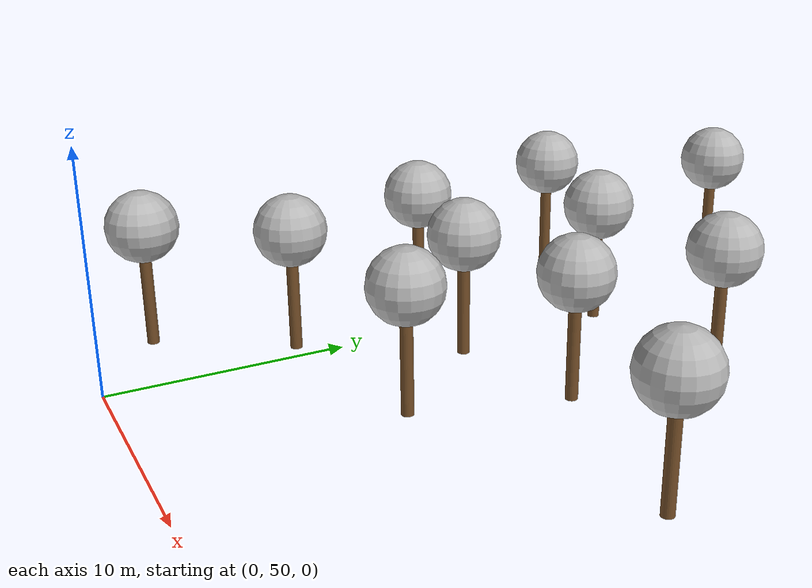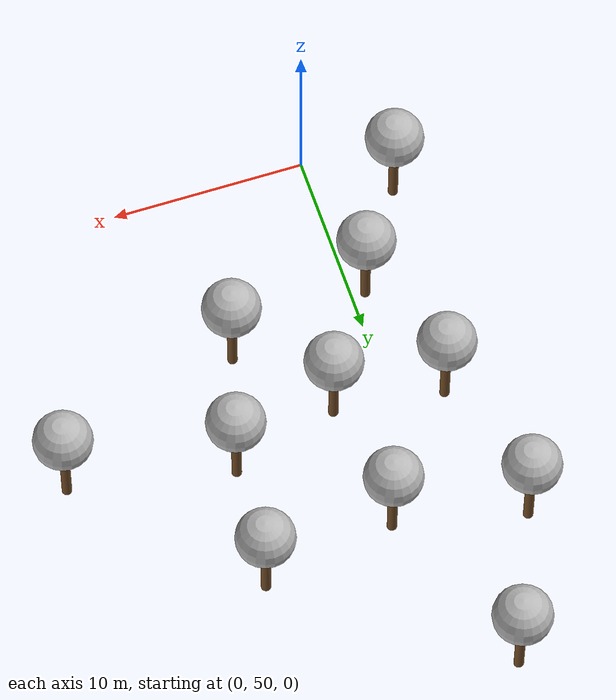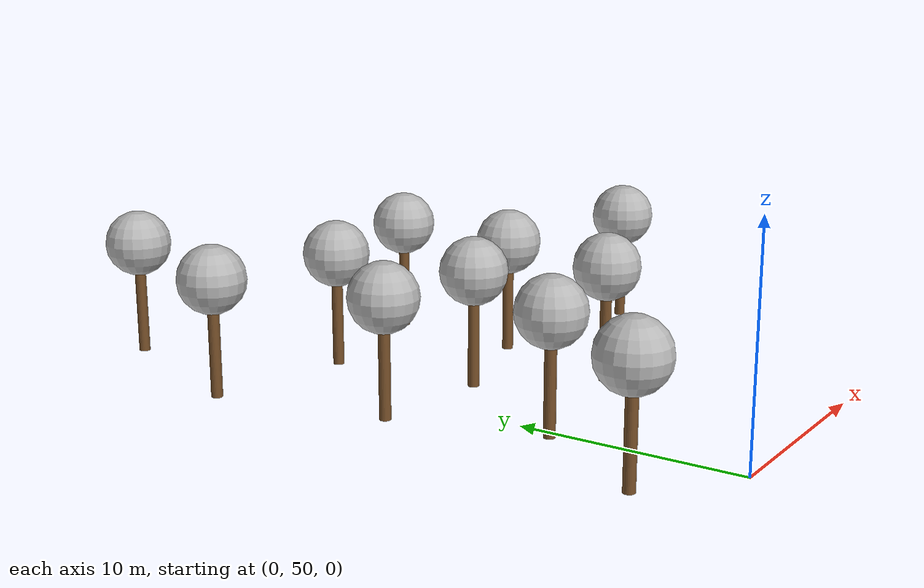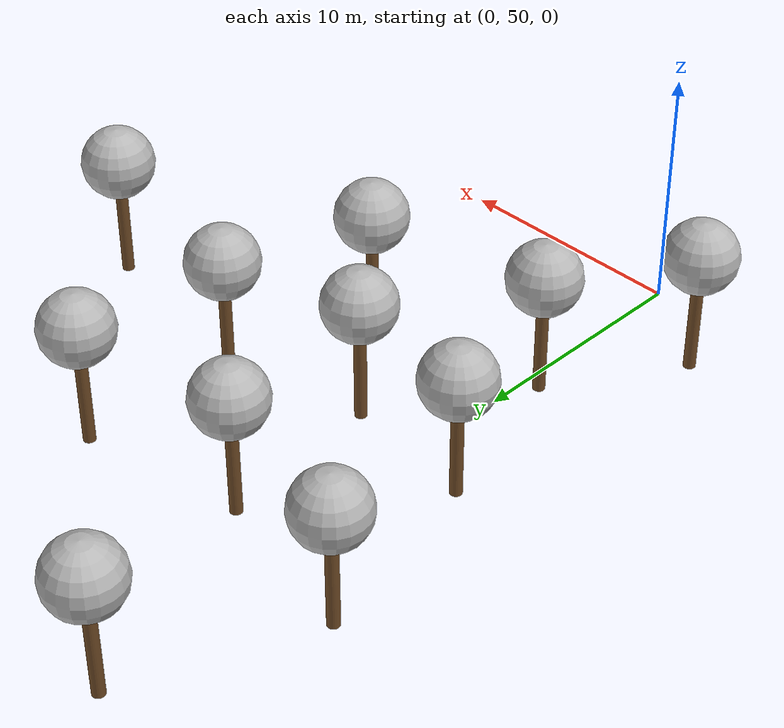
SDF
<sdf version="1.7">
 <world name="default">
  <model name="tree_simple">
   <static>1</static>
   <link name="link">
    <pose>0 0 0.1 0 -0 0</pose>
    <inertial>
     <mass>666</mass>
     <inertia>
      <ixx>0.0861167</ixx>
      <ixy>0</ixy>
      <ixz>0</ixz>
      <iyy>0.0861167</iyy>
      <iyz>0</iyz>
      <izz>0.0861167</izz>
     </inertia>
    </inertial>
    <collision name="collision_trunk">
     <pose>0 0 2 0 -0 0</pose>
     <geometry><cylinder><radius>0.25</radius><length>4</length></cylinder></geometry>
     <surface>
      <contact>
       <poissons_ratio>0.347</poissons_ratio>
       <elastic_modulus>8.8e+09</elastic_modulus>
       <ode><kp>100000</kp><kd>100</kd><max_vel>100</max_vel><min_depth>0.001</min_depth></ode>
      </contact>
      <friction>
       <torsional>
        <coefficient>1</coefficient>
        <use_patch_radius>0</use_patch_radius>
        <surface_radius>0.01</surface_radius>
       </torsional>
      </friction>
     </surface>
    </collision>
    <collision name="collision_treetop">
     <pose>0 0 5.2 0 -0 0</pose>
     <geometry><sphere><radius>1.5</radius></sphere></geometry>
     <surface>
      <contact>
       <poissons_ratio>0.347</poissons_ratio>
       <elastic_modulus>8.8e+09</elastic_modulus>
       <ode><kp>100000</kp><kd>100</kd><max_vel>100</max_vel><min_depth>0.001</min_depth></ode>
      </contact>
      <friction>
       <torsional>
        <coefficient>1</coefficient>
        <use_patch_radius>0</use_patch_radius>
        <surface_radius>0.01</surface_radius>
       </torsional>
      </friction>
     </surface>
    </collision>
    <visual name="trunk">
     <pose>0 0 2 0 -0 0</pose>
     <geometry><cylinder><radius>0.25</radius><length>4</length></cylinder></geometry>
     <material>
      <script>
       <uri>model://tree_simple/scripts</uri>
       <uri>model://tree_simple/materials/textures</uri>
       <name>TreeSimple/Trunk</name>
      </script>
     </material>
    </visual>
    <visual name="treetop">
     <pose>0 0 5.2 0 -0 0</pose>
     <geometry><sphere><radius>1.5</radius></sphere></geometry>
     <material>
      <script>
       <uri>model://tree_simple/scripts</uri>
       <uri>model://tree_simple/materials/textures</uri>
       <name>TreeSimple/Treetop</name>
      </script>
     </material>
    </visual>
   </link>
   <pose>6.82311 59.8354 0 0 -0 0</pose>
  </model>
  <model name="tree_simple_0_clone">
   <static>1</static>
   <link name="link">
    <pose>0 0 0.1 0 -0 0</pose>
    <inertial>
     <mass>666</mass>
     <inertia>
      <ixx>0.0861167</ixx>
      <ixy>0</ixy>
      <ixz>0</ixz>
      <iyy>0.0861167</iyy>
      <iyz>0</iyz>
      <izz>0.0861167</izz>
     </inertia>
    </inertial>
    <collision name="collision_trunk">
     <pose>0 0 2 0 -0 0</pose>
     <geometry><cylinder><radius>0.25</radius><length>4</length></cylinder></geometry>
     <surface>
      <contact>
       <poissons_ratio>0.347</poissons_ratio>
       <elastic_modulus>8.8e+09</elastic_modulus>
       <ode><kp>100000</kp><kd>100</kd><max_vel>100</max_vel><min_depth>0.001</min_depth></ode>
      </contact>
      <friction>
       <torsional>
        <coefficient>1</coefficient>
        <use_patch_radius>0</use_patch_radius>
        <surface_radius>0.01</surface_radius>
       </torsional>
      </friction>
     </surface>
    </collision>
    <collision name="collision_treetop">
     <pose>0 0 5.2 0 -0 0</pose>
     <geometry><sphere><radius>1.5</radius></sphere></geometry>
     <surface>
      <contact>
       <poissons_ratio>0.347</poissons_ratio>
       <elastic_modulus>8.8e+09</elastic_modulus>
       <ode><kp>100000</kp><kd>100</kd><max_vel>100</max_vel><min_depth>0.001</min_depth></ode>
      </contact>
      <friction>
       <torsional>
        <coefficient>1</coefficient>
        <use_patch_radius>0</use_patch_radius>
        <surface_radius>0.01</surface_radius>
       </torsional>
      </friction>
     </surface>
    </collision>
    <visual name="trunk">
     <pose>0 0 2 0 -0 0</pose>
     <geometry><cylinder><radius>0.25</radius><length>4</length></cylinder></geometry>
     <material>
      <script>
       <uri>model://tree_simple/scripts</uri>
       <uri>model://tree_simple/materials/textures</uri>
       <name>TreeSimple/Trunk</name>
      </script>
     </material>
    </visual>
    <visual name="treetop">
     <pose>0 0 5.2 0 -0 0</pose>
     <geometry><sphere><radius>1.5</radius></sphere></geometry>
     <material>
      <script>
       <uri>model://tree_simple/scripts</uri>
       <uri>model://tree_simple/materials/textures</uri>
       <name>TreeSimple/Treetop</name>
      </script>
     </material>
    </visual>
   </link>
   <pose>16.8324 64.3347 0 0 -0 0</pose>
  </model>
  <model name="tree_simple_0_clone_0">
   <static>1</static>
   <link name="link">
    <pose>0 0 0.1 0 -0 0</pose>
    <inertial>
     <mass>666</mass>
     <inertia>
      <ixx>0.0861167</ixx>
      <ixy>0</ixy>
      <ixz>0</ixz>
      <iyy>0.0861167</iyy>
      <iyz>0</iyz>
      <izz>0.0861167</izz>
     </inertia>
    </inertial>
    <collision name="collision_trunk">
     <pose>0 0 2 0 -0 0</pose>
     <geometry><cylinder><radius>0.25</radius><length>4</length></cylinder></geometry>
     <surface>
      <contact>
       <poissons_ratio>0.347</poissons_ratio>
       <elastic_modulus>8.8e+09</elastic_modulus>
       <ode><kp>100000</kp><kd>100</kd><max_vel>100</max_vel><min_depth>0.001</min_depth></ode>
      </contact>
      <friction>
       <torsional>
        <coefficient>1</coefficient>
        <use_patch_radius>0</use_patch_radius>
        <surface_radius>0.01</surface_radius>
       </torsional>
      </friction>
     </surface>
    </collision>
    <collision name="collision_treetop">
     <pose>0 0 5.2 0 -0 0</pose>
     <geometry><sphere><radius>1.5</radius></sphere></geometry>
     <surface>
      <contact>
       <poissons_ratio>0.347</poissons_ratio>
       <elastic_modulus>8.8e+09</elastic_modulus>
       <ode><kp>100000</kp><kd>100</kd><max_vel>100</max_vel><min_depth>0.001</min_depth></ode>
      </contact>
      <friction>
       <torsional>
        <coefficient>1</coefficient>
        <use_patch_radius>0</use_patch_radius>
        <surface_radius>0.01</surface_radius>
       </torsional>
      </friction>
     </surface>
    </collision>
    <visual name="trunk">
     <pose>0 0 2 0 -0 0</pose>
     <geometry><cylinder><radius>0.25</radius><length>4</length></cylinder></geometry>
     <material>
      <script>
       <uri>model://tree_simple/scripts</uri>
       <uri>model://tree_simple/materials/textures</uri>
       <name>TreeSimple/Trunk</name>
      </script>
     </material>
    </visual>
    <visual name="treetop">
     <pose>0 0 5.2 0 -0 0</pose>
     <geometry><sphere><radius>1.5</radius></sphere></geometry>
     <material>
      <script>
       <uri>model://tree_simple/scripts</uri>
       <uri>model://tree_simple/materials/textures</uri>
       <name>TreeSimple/Treetop</name>
      </script>
     </material>
    </visual>
   </link>
   <pose>-2.64272 64.897 0 0 -0 0</pose>
  </model>
  <model name="tree_simple_0_clone_0_clone">
   <static>1</static>
   <link name="link">
    <pose>0 0 0.1 0 -0 0</pose>
    <inertial>
     <mass>666</mass>
     <inertia>
      <ixx>0.0861167</ixx>
      <ixy>0</ixy>
      <ixz>0</ixz>
      <iyy>0.0861167</iyy>
      <iyz>0</iyz>
      <izz>0.0861167</izz>
     </inertia>
    </inertial>
    <collision name="collision_trunk">
     <pose>0 0 2 0 -0 0</pose>
     <geometry><cylinder><radius>0.25</radius><length>4</length></cylinder></geometry>
     <surface>
      <contact>
       <poissons_ratio>0.347</poissons_ratio>
       <elastic_modulus>8.8e+09</elastic_modulus>
       <ode><kp>100000</kp><kd>100</kd><max_vel>100</max_vel><min_depth>0.001</min_depth></ode>
      </contact>
      <friction>
       <torsional>
        <coefficient>1</coefficient>
        <use_patch_radius>0</use_patch_radius>
        <surface_radius>0.01</surface_radius>
       </torsional>
      </friction>
     </surface>
    </collision>
    <collision name="collision_treetop">
     <pose>0 0 5.2 0 -0 0</pose>
     <geometry><sphere><radius>1.5</radius></sphere></geometry>
     <surface>
      <contact>
       <poissons_ratio>0.347</poissons_ratio>
       <elastic_modulus>8.8e+09</elastic_modulus>
       <ode><kp>100000</kp><kd>100</kd><max_vel>100</max_vel><min_depth>0.001</min_depth></ode>
      </contact>
      <friction>
       <torsional>
        <coefficient>1</coefficient>
        <use_patch_radius>0</use_patch_radius>
        <surface_radius>0.01</surface_radius>
       </torsional>
      </friction>
     </surface>
    </collision>
    <visual name="trunk">
     <pose>0 0 2 0 -0 0</pose>
     <geometry><cylinder><radius>0.25</radius><length>4</length></cylinder></geometry>
     <material>
      <script>
       <uri>model://tree_simple/scripts</uri>
       <uri>model://tree_simple/materials/textures</uri>
       <name>TreeSimple/Trunk</name>
      </script>
     </material>
    </visual>
    <visual name="treetop">
     <pose>0 0 5.2 0 -0 0</pose>
     <geometry><sphere><radius>1.5</radius></sphere></geometry>
     <material>
      <script>
       <uri>model://tree_simple/scripts</uri>
       <uri>model://tree_simple/materials/textures</uri>
       <name>TreeSimple/Treetop</name>
      </script>
     </material>
    </visual>
   </link>
   <pose>-3.94262 52.9933 0 0 -0 0</pose>
  </model>
  <model name="tree_simple_0_clone_0_clone_clone_0">
   <static>1</static>
   <link name="link">
    <pose>0 0 0.1 0 -0 0</pose>
    <inertial>
     <mass>666</mass>
     <inertia>
      <ixx>0.0861167</ixx>
      <ixy>0</ixy>
      <ixz>0</ixz>
      <iyy>0.0861167</iyy>
      <iyz>0</iyz>
      <izz>0.0861167</izz>
     </inertia>
    </inertial>
    <collision name="collision_trunk">
     <pose>0 0 2 0 -0 0</pose>
     <geometry><cylinder><radius>0.25</radius><length>4</length></cylinder></geometry>
     <surface>
      <contact>
       <poissons_ratio>0.347</poissons_ratio>
       <elastic_modulus>8.8e+09</elastic_modulus>
       <ode><kp>100000</kp><kd>100</kd><max_vel>100</max_vel><min_depth>0.001</min_depth></ode>
      </contact>
      <friction>
       <torsional>
        <coefficient>1</coefficient>
        <use_patch_radius>0</use_patch_radius>
        <surface_radius>0.01</surface_radius>
       </torsional>
      </friction>
     </surface>
    </collision>
    <collision name="collision_treetop">
     <pose>0 0 5.2 0 -0 0</pose>
     <geometry><sphere><radius>1.5</radius></sphere></geometry>
     <surface>
      <contact>
       <poissons_ratio>0.347</poissons_ratio>
       <elastic_modulus>8.8e+09</elastic_modulus>
       <ode><kp>100000</kp><kd>100</kd><max_vel>100</max_vel><min_depth>0.001</min_depth></ode>
      </contact>
      <friction>
       <torsional>
        <coefficient>1</coefficient>
        <use_patch_radius>0</use_patch_radius>
        <surface_radius>0.01</surface_radius>
       </torsional>
      </friction>
     </surface>
    </collision>
    <visual name="trunk">
     <pose>0 0 2 0 -0 0</pose>
     <geometry><cylinder><radius>0.25</radius><length>4</length></cylinder></geometry>
     <material>
      <script>
       <uri>model://tree_simple/scripts</uri>
       <uri>model://tree_simple/materials/textures</uri>
       <name>TreeSimple/Trunk</name>
      </script>
     </material>
    </visual>
    <visual name="treetop">
     <pose>0 0 5.2 0 -0 0</pose>
     <geometry><sphere><radius>1.5</radius></sphere></geometry>
     <material>
      <script>
       <uri>model://tree_simple/scripts</uri>
       <uri>model://tree_simple/materials/textures</uri>
       <name>TreeSimple/Treetop</name>
      </script>
     </material>
    </visual>
   </link>
   <pose>9.13521 72.4249 0 0 -0 0</pose>
  </model>
  <model name="tree_simple_0_clone_0_clone_clone_7">
   <static>1</static>
   <link name="link">
    <pose>0 0 0.1 0 -0 0</pose>
    <inertial>
     <mass>666</mass>
     <inertia>
      <ixx>0.0861167</ixx>
      <ixy>0</ixy>
      <ixz>0</ixz>
      <iyy>0.0861167</iyy>
      <iyz>0</iyz>
      <izz>0.0861167</izz>
     </inertia>
    </inertial>
    <collision name="collision_trunk">
     <pose>0 0 2 0 -0 0</pose>
     <geometry><cylinder><radius>0.25</radius><length>4</length></cylinder></geometry>
     <surface>
      <contact>
       <poissons_ratio>0.347</poissons_ratio>
       <elastic_modulus>8.8e+09</elastic_modulus>
       <ode><kp>100000</kp><kd>100</kd><max_vel>100</max_vel><min_depth>0.001</min_depth></ode>
      </contact>
      <friction>
       <torsional>
        <coefficient>1</coefficient>
        <use_patch_radius>0</use_patch_radius>
        <surface_radius>0.01</surface_radius>
       </torsional>
      </friction>
     </surface>
    </collision>
    <collision name="collision_treetop">
     <pose>0 0 5.2 0 -0 0</pose>
     <geometry><sphere><radius>1.5</radius></sphere></geometry>
     <surface>
      <contact>
       <poissons_ratio>0.347</poissons_ratio>
       <elastic_modulus>8.8e+09</elastic_modulus>
       <ode><kp>100000</kp><kd>100</kd><max_vel>100</max_vel><min_depth>0.001</min_depth></ode>
      </contact>
      <friction>
       <torsional>
        <coefficient>1</coefficient>
        <use_patch_radius>0</use_patch_radius>
        <surface_radius>0.01</surface_radius>
       </torsional>
      </friction>
     </surface>
    </collision>
    <visual name="trunk">
     <pose>0 0 2 0 -0 0</pose>
     <geometry><cylinder><radius>0.25</radius><length>4</length></cylinder></geometry>
     <material>
      <script>
       <uri>model://tree_simple/scripts</uri>
       <uri>model://tree_simple/materials/textures</uri>
       <name>TreeSimple/Trunk</name>
      </script>
     </material>
    </visual>
    <visual name="treetop">
     <pose>0 0 5.2 0 -0 0</pose>
     <geometry><sphere><radius>1.5</radius></sphere></geometry>
     <material>
      <script>
       <uri>model://tree_simple/scripts</uri>
       <uri>model://tree_simple/materials/textures</uri>
       <name>TreeSimple/Treetop</name>
      </script>
     </material>
    </visual>
   </link>
   <pose>-1.21544 80.1575 0 0 -0 0</pose>
  </model>
  <model name="tree_simple_clone">
   <static>1</static>
   <link name="link">
    <pose>0 0 0.1 0 -0 0</pose>
    <inertial>
     <mass>666</mass>
     <inertia>
      <ixx>0.0861167</ixx>
      <ixy>0</ixy>
      <ixz>0</ixz>
      <iyy>0.0861167</iyy>
      <iyz>0</iyz>
      <izz>0.0861167</izz>
     </inertia>
    </inertial>
    <collision name="collision_trunk">
     <pose>0 0 2 0 -0 0</pose>
     <geometry><cylinder><radius>0.25</radius><length>4</length></cylinder></geometry>
     <surface>
      <contact>
       <poissons_ratio>0.347</poissons_ratio>
       <elastic_modulus>8.8e+09</elastic_modulus>
       <ode><kp>100000</kp><kd>100</kd><max_vel>100</max_vel><min_depth>0.001</min_depth></ode>
      </contact>
      <friction>
       <torsional>
        <coefficient>1</coefficient>
        <use_patch_radius>0</use_patch_radius>
        <surface_radius>0.01</surface_radius>
       </torsional>
      </friction>
     </surface>
    </collision>
    <collision name="collision_treetop">
     <pose>0 0 5.2 0 -0 0</pose>
     <geometry><sphere><radius>1.5</radius></sphere></geometry>
     <surface>
      <contact>
       <poissons_ratio>0.347</poissons_ratio>
       <elastic_modulus>8.8e+09</elastic_modulus>
       <ode><kp>100000</kp><kd>100</kd><max_vel>100</max_vel><min_depth>0.001</min_depth></ode>
      </contact>
      <friction>
       <torsional>
        <coefficient>1</coefficient>
        <use_patch_radius>0</use_patch_radius>
        <surface_radius>0.01</surface_radius>
       </torsional>
      </friction>
     </surface>
    </collision>
    <visual name="trunk">
     <pose>0 0 2 0 -0 0</pose>
     <geometry><cylinder><radius>0.25</radius><length>4</length></cylinder></geometry>
     <material>
      <script>
       <uri>model://tree_simple/scripts</uri>
       <uri>model://tree_simple/materials/textures</uri>
       <name>TreeSimple/Trunk</name>
      </script>
     </material>
    </visual>
    <visual name="treetop">
     <pose>0 0 5.2 0 -0 0</pose>
     <geometry><sphere><radius>1.5</radius></sphere></geometry>
     <material>
      <script>
       <uri>model://tree_simple/scripts</uri>
       <uri>model://tree_simple/materials/textures</uri>
       <name>TreeSimple/Treetop</name>
      </script>
     </material>
    </visual>
   </link>
   <pose>-0.705759 58.2245 0 0 -0 0</pose>
  </model>
  <model name="tree_simple_clone_0">
   <static>1</static>
   <link name="link">
    <pose>0 0 0.1 0 -0 0</pose>
    <inertial>
     <mass>666</mass>
     <inertia>
      <ixx>0.0861167</ixx>
      <ixy>0</ixy>
      <ixz>0</ixz>
      <iyy>0.0861167</iyy>
      <iyz>0</iyz>
      <izz>0.0861167</izz>
     </inertia>
    </inertial>
    <collision name="collision_trunk">
     <pose>0 0 2 0 -0 0</pose>
     <geometry><cylinder><radius>0.25</radius><length>4</length></cylinder></geometry>
     <surface>
      <contact>
       <poissons_ratio>0.347</poissons_ratio>
       <elastic_modulus>8.8e+09</elastic_modulus>
       <ode><kp>100000</kp><kd>100</kd><max_vel>100</max_vel><min_depth>0.001</min_depth></ode>
      </contact>
      <friction>
       <torsional>
        <coefficient>1</coefficient>
        <use_patch_radius>0</use_patch_radius>
        <surface_radius>0.01</surface_radius>
       </torsional>
      </friction>
     </surface>
    </collision>
    <collision name="collision_treetop">
     <pose>0 0 5.2 0 -0 0</pose>
     <geometry><sphere><radius>1.5</radius></sphere></geometry>
     <surface>
      <contact>
       <poissons_ratio>0.347</poissons_ratio>
       <elastic_modulus>8.8e+09</elastic_modulus>
       <ode><kp>100000</kp><kd>100</kd><max_vel>100</max_vel><min_depth>0.001</min_depth></ode>
      </contact>
      <friction>
       <torsional>
        <coefficient>1</coefficient>
        <use_patch_radius>0</use_patch_radius>
        <surface_radius>0.01</surface_radius>
       </torsional>
      </friction>
     </surface>
    </collision>
    <visual name="trunk">
     <pose>0 0 2 0 -0 0</pose>
     <geometry><cylinder><radius>0.25</radius><length>4</length></cylinder></geometry>
     <material>
      <script>
       <uri>model://tree_simple/scripts</uri>
       <uri>model://tree_simple/materials/textures</uri>
       <name>TreeSimple/Trunk</name>
      </script>
     </material>
    </visual>
    <visual name="treetop">
     <pose>0 0 5.2 0 -0 0</pose>
     <geometry><sphere><radius>1.5</radius></sphere></geometry>
     <material>
      <script>
       <uri>model://tree_simple/scripts</uri>
       <uri>model://tree_simple/materials/textures</uri>
       <name>TreeSimple/Treetop</name>
      </script>
     </material>
    </visual>
   </link>
   <pose>2.97109 64.2393 0 0 -0 0</pose>
  </model>
  <model name="tree_simple_clone_1">
   <static>1</static>
   <link name="link">
    <pose>0 0 0.1 0 -0 0</pose>
    <inertial>
     <mass>666</mass>
     <inertia>
      <ixx>0.0861167</ixx>
      <ixy>0</ixy>
      <ixz>0</ixz>
      <iyy>0.0861167</iyy>
      <iyz>0</iyz>
      <izz>0.0861167</izz>
     </inertia>
    </inertial>
    <collision name="collision_trunk">
     <pose>0 0 2 0 -0 0</pose>
     <geometry><cylinder><radius>0.25</radius><length>4</length></cylinder></geometry>
     <surface>
      <contact>
       <poissons_ratio>0.347</poissons_ratio>
       <elastic_modulus>8.8e+09</elastic_modulus>
       <ode><kp>100000</kp><kd>100</kd><max_vel>100</max_vel><min_depth>0.001</min_depth></ode>
      </contact>
      <friction>
       <torsional>
        <coefficient>1</coefficient>
        <use_patch_radius>0</use_patch_radius>
        <surface_radius>0.01</surface_radius>
       </torsional>
      </friction>
     </surface>
    </collision>
    <collision name="collision_treetop">
     <pose>0 0 5.2 0 -0 0</pose>
     <geometry><sphere><radius>1.5</radius></sphere></geometry>
     <surface>
      <contact>
       <poissons_ratio>0.347</poissons_ratio>
       <elastic_modulus>8.8e+09</elastic_modulus>
       <ode><kp>100000</kp><kd>100</kd><max_vel>100</max_vel><min_depth>0.001</min_depth></ode>
      </contact>
      <friction>
       <torsional>
        <coefficient>1</coefficient>
        <use_patch_radius>0</use_patch_radius>
        <surface_radius>0.01</surface_radius>
       </torsional>
      </friction>
     </surface>
    </collision>
    <visual name="trunk">
     <pose>0 0 2 0 -0 0</pose>
     <geometry><cylinder><radius>0.25</radius><length>4</length></cylinder></geometry>
     <material>
      <script>
       <uri>model://tree_simple/scripts</uri>
       <uri>model://tree_simple/materials/textures</uri>
       <name>TreeSimple/Trunk</name>
      </script>
     </material>
    </visual>
    <visual name="treetop">
     <pose>0 0 5.2 0 -0 0</pose>
     <geometry><sphere><radius>1.5</radius></sphere></geometry>
     <material>
      <script>
       <uri>model://tree_simple/scripts</uri>
       <uri>model://tree_simple/materials/textures</uri>
       <name>TreeSimple/Treetop</name>
      </script>
     </material>
    </visual>
   </link>
   <pose>8.56692 65.9789 0 0 -0 0</pose>
  </model>
  <model name="tree_simple_clone_2">
   <static>1</static>
   <link name="link">
    <pose>0 0 0.1 0 -0 0</pose>
    <inertial>
     <mass>666</mass>
     <inertia>
      <ixx>0.0861167</ixx>
      <ixy>0</ixy>
      <ixz>0</ixz>
      <iyy>0.0861167</iyy>
      <iyz>0</iyz>
      <izz>0.0861167</izz>
     </inertia>
    </inertial>
    <collision name="collision_trunk">
     <pose>0 0 2 0 -0 0</pose>
     <geometry><cylinder><radius>0.25</radius><length>4</length></cylinder></geometry>
     <surface>
      <contact>
       <poissons_ratio>0.347</poissons_ratio>
       <elastic_modulus>8.8e+09</elastic_modulus>
       <ode><kp>100000</kp><kd>100</kd><max_vel>100</max_vel><min_depth>0.001</min_depth></ode>
      </contact>
      <friction>
       <torsional>
        <coefficient>1</coefficient>
        <use_patch_radius>0</use_patch_radius>
        <surface_radius>0.01</surface_radius>
       </torsional>
      </friction>
     </surface>
    </collision>
    <collision name="collision_treetop">
     <pose>0 0 5.2 0 -0 0</pose>
     <geometry><sphere><radius>1.5</radius></sphere></geometry>
     <surface>
      <contact>
       <poissons_ratio>0.347</poissons_ratio>
       <elastic_modulus>8.8e+09</elastic_modulus>
       <ode><kp>100000</kp><kd>100</kd><max_vel>100</max_vel><min_depth>0.001</min_depth></ode>
      </contact>
      <friction>
       <torsional>
        <coefficient>1</coefficient>
        <use_patch_radius>0</use_patch_radius>
        <surface_radius>0.01</surface_radius>
       </torsional>
      </friction>
     </surface>
    </collision>
    <visual name="trunk">
     <pose>0 0 2 0 -0 0</pose>
     <geometry><cylinder><radius>0.25</radius><length>4</length></cylinder></geometry>
     <material>
      <script>
       <uri>model://tree_simple/scripts</uri>
       <uri>model://tree_simple/materials/textures</uri>
       <name>TreeSimple/Trunk</name>
      </script>
     </material>
    </visual>
    <visual name="treetop">
     <pose>0 0 5.2 0 -0 0</pose>
     <geometry><sphere><radius>1.5</radius></sphere></geometry>
     <material>
      <script>
       <uri>model://tree_simple/scripts</uri>
       <uri>model://tree_simple/materials/textures</uri>
       <name>TreeSimple/Treetop</name>
      </script>
     </material>
    </visual>
   </link>
   <pose>2.23901 71.1882 0 0 -0 0</pose>
  </model>
  <model name="tree_simple_0_clone_0_clone_clone_clone">
   <static>1</static>
   <link name="link">
    <pose>0 0 0.1 0 -0 0</pose>
    <inertial>
     <mass>666</mass>
     <inertia>
      <ixx>0.0861167</ixx>
      <ixy>0</ixy>
      <ixz>0</ixz>
      <iyy>0.0861167</iyy>
      <iyz>0</iyz>
      <izz>0.0861167</izz>
     </inertia>
    </inertial>
    <collision name="collision_trunk">
     <pose>0 0 2 0 -0 0</pose>
     <geometry><cylinder><radius>0.25</radius><length>4</length></cylinder></geometry>
     <surface>
      <contact>
       <poissons_ratio>0.347</poissons_ratio>
       <elastic_modulus>8.8e+09</elastic_modulus>
       <ode><kp>100000</kp><kd>100</kd><max_vel>100</max_vel><min_depth>0.001</min_depth></ode>
      </contact>
      <friction>
       <torsional>
        <coefficient>1</coefficient>
        <use_patch_radius>0</use_patch_radius>
        <surface_radius>0.01</surface_radius>
       </torsional>
      </friction>
     </surface>
    </collision>
    <collision name="collision_treetop">
     <pose>0 0 5.2 0 -0 0</pose>
     <geometry><sphere><radius>1.5</radius></sphere></geometry>
     <surface>
      <contact>
       <poissons_ratio>0.347</poissons_ratio>
       <elastic_modulus>8.8e+09</elastic_modulus>
       <ode><kp>100000</kp><kd>100</kd><max_vel>100</max_vel><min_depth>0.001</min_depth></ode>
      </contact>
      <friction>
       <torsional>
        <coefficient>1</coefficient>
        <use_patch_radius>0</use_patch_radius>
        <surface_radius>0.01</surface_radius>
       </torsional>
      </friction>
     </surface>
    </collision>
    <visual name="trunk">
     <pose>0 0 2 0 -0 0</pose>
     <geometry><cylinder><radius>0.25</radius><length>4</length></cylinder></geometry>
     <material>
      <script>
       <uri>model://tree_simple/scripts</uri>
       <uri>model://tree_simple/materials/textures</uri>
       <name>TreeSimple/Trunk</name>
      </script>
     </material>
    </visual>
    <visual name="treetop">
     <pose>0 0 5.2 0 -0 0</pose>
     <geometry><sphere><radius>1.5</radius></sphere></geometry>
     <material>
      <script>
       <uri>model://tree_simple/scripts</uri>
       <uri>model://tree_simple/materials/textures</uri>
       <name>TreeSimple/Treetop</name>
      </script>
     </material>
    </visual>
   </link>
   <pose>-4.34082 72.6333 0 0 -0 0</pose>
  </model>
 </world>
</sdf>
